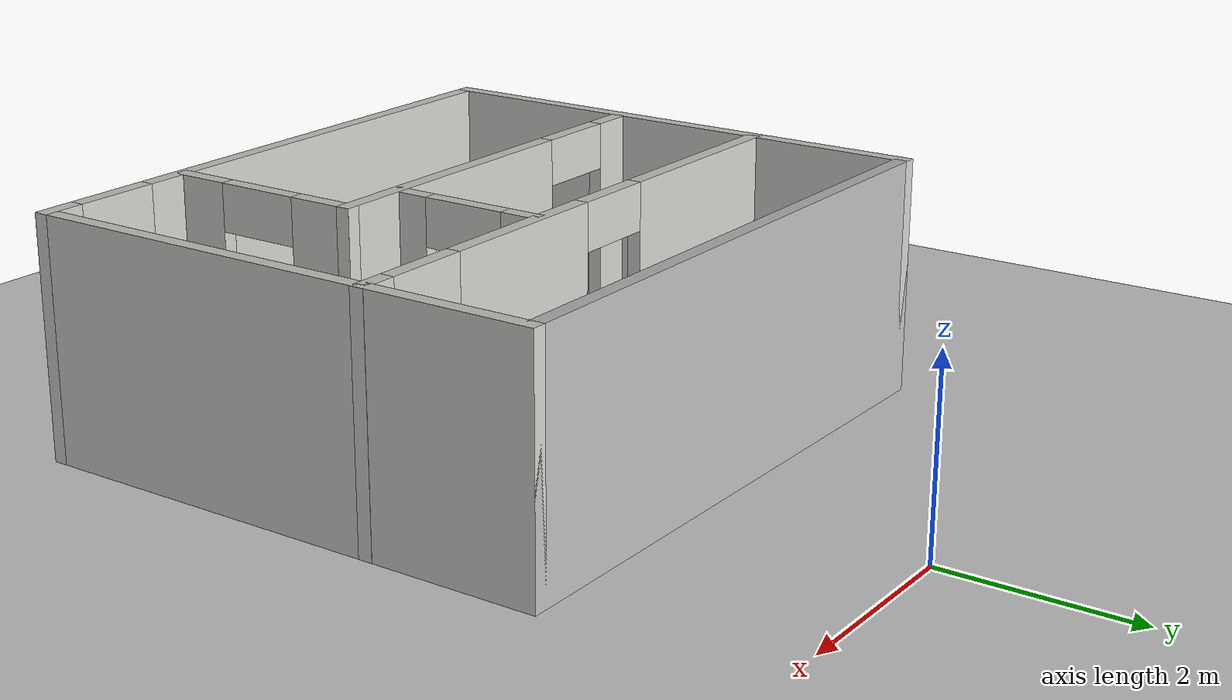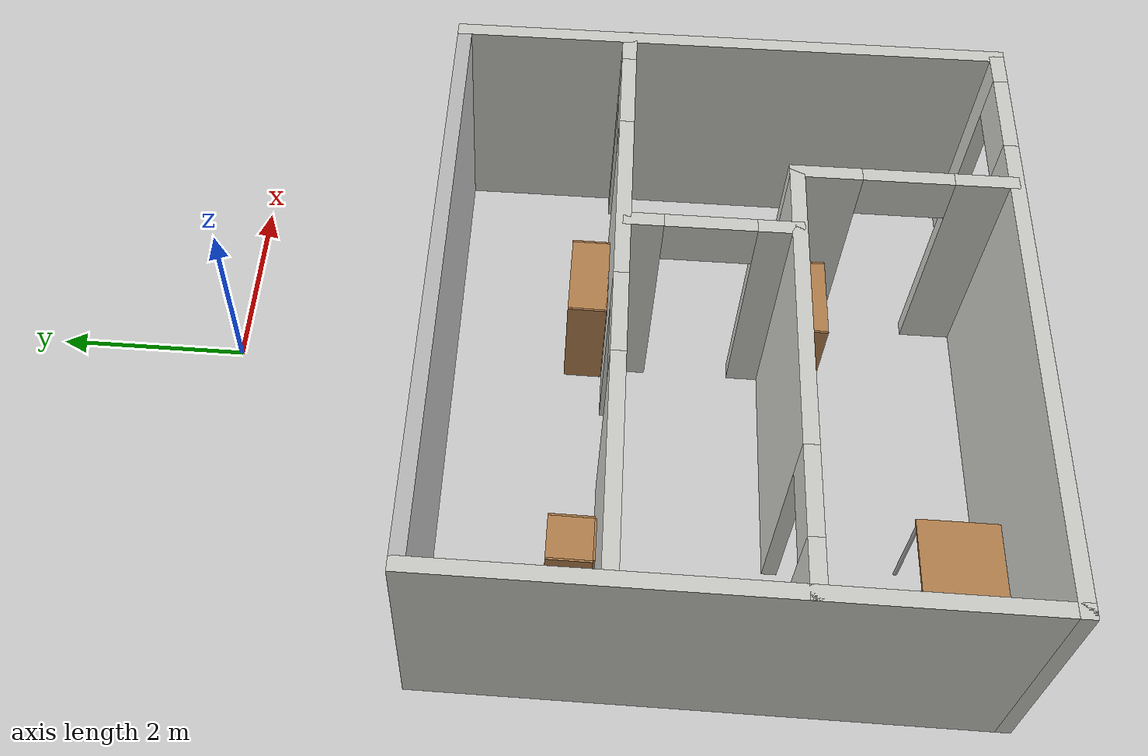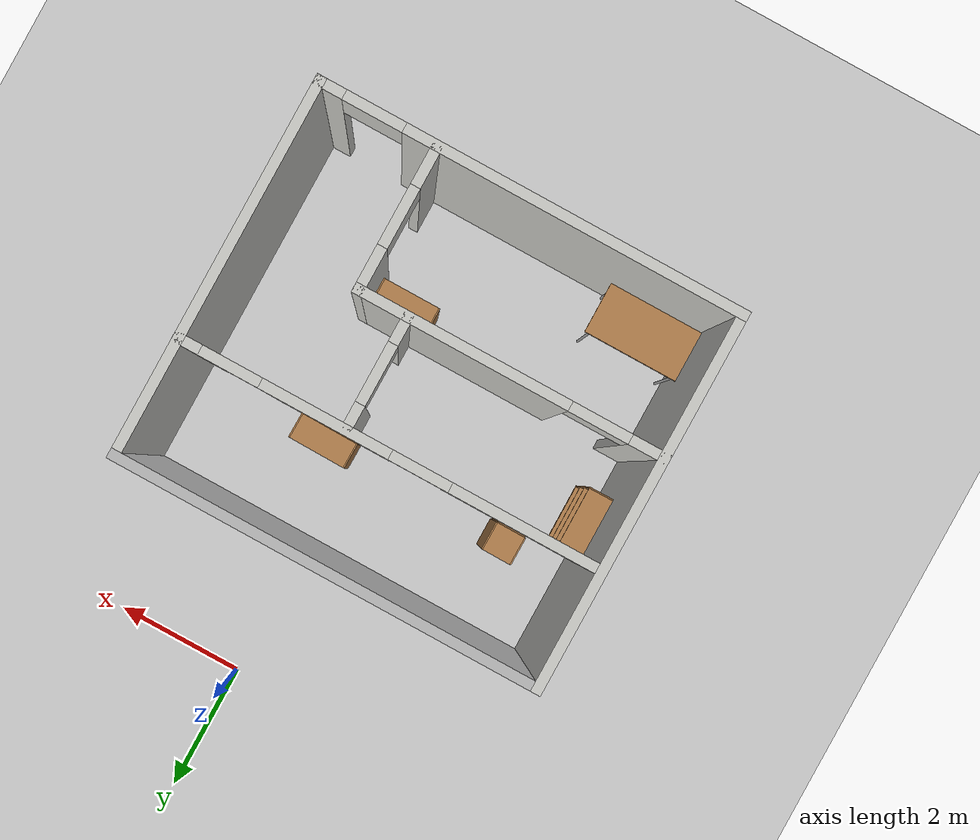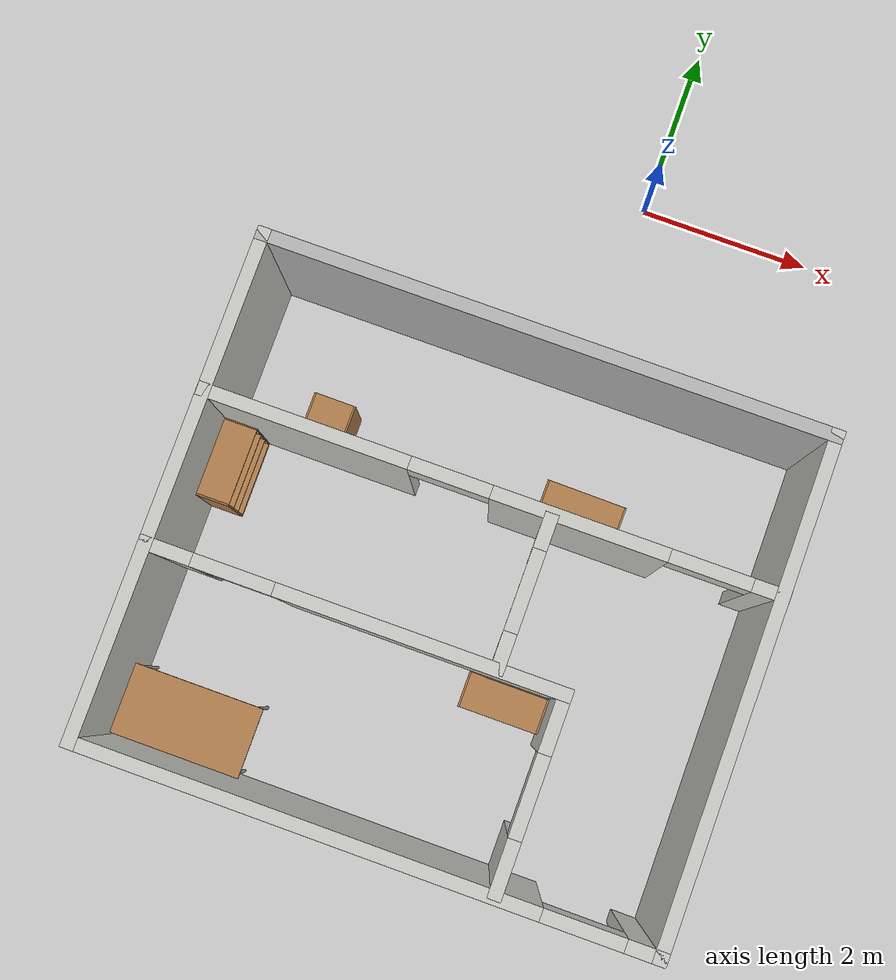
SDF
<sdf version="1.7">
 <world name="default">
  <light name="sun" type="directional">
   <pose>0 0 10 0 -0 0</pose>
   <diffuse>0.8 0.8 0.8 1</diffuse>
   <specular>0.2 0.2 0.2 1</specular>
   <attenuation>
    <range>1000</range>
    <constant>0.9</constant>
    <linear>0.01</linear>
    <quadratic>0.001</quadratic>
   </attenuation>
   <direction>-0.5 0.1 -0.9</direction>
   <spot><inner_angle>0</inner_angle><outer_angle>0</outer_angle><falloff>0</falloff></spot>
  </light>
  <model name="ground_plane">
   <static>1</static>
   <link name="link">
    <collision name="collision">
     <geometry><plane><normal>0 0 1</normal><size>100 100</size></plane></geometry>
     <surface><friction><ode><mu>100</mu><mu2>50</mu2></ode></friction></surface>
    </collision>
    <visual name="visual">
     <cast_shadows>0</cast_shadows>
     <geometry><plane><normal>0 0 1</normal><size>100 100</size></plane></geometry>
     <material>
      <script><uri>file://media/materials/scripts/gazebo.material</uri><name>Gazebo/Grey</name></script>
     </material>
    </visual>
   </link>
  </model>
  <gravity>0 0 -9.8</gravity>
  <magnetic_field>6e-06 2.3e-05 -4.2e-05</magnetic_field>
  <atmosphere type="adiabatic"/>
  <physics type="ode">
   <max_step_size>0.001</max_step_size>
   <real_time_factor>1</real_time_factor>
   <real_time_update_rate>1000</real_time_update_rate>
  </physics>
  <scene><ambient>0.4 0.4 0.4 1</ambient><background>0.7 0.7 0.7 1</background><shadows>1</shadows></scene>
  <audio><device>default</device></audio>
  <spherical_coordinates>
   <surface_model>EARTH_WGS84</surface_model>
   <latitude_deg>0</latitude_deg>
   <longitude_deg>0</longitude_deg>
   <elevation>0</elevation>
   <heading_deg>0</heading_deg>
  </spherical_coordinates>
  <model name="factory">
   <pose>-0.515946 -3.48725 0 0 -0 0</pose>
   <link name="Wall_25">
    <pose>-0.001225 -4.40387 0 0 -0 0</pose>
    <visual name="Wall_25_Visual_0">
     <pose>-0.67288 0 1.25 0 -0 0</pose>
     <geometry><box><size>5.15424 0.15 2.5</size></box></geometry>
     <material>
      <script><uri>file://media/materials/scripts/gazebo.material</uri><name>Gazebo/CeilingTiled</name></script>
      <ambient>1 1 1 1</ambient>
     </material>
     <meta><layer>0</layer></meta>
    </visual>
    <collision name="Wall_25_Collision_0">
     <geometry><box><size>5.15424 0.15 2.5</size></box></geometry>
     <pose>-0.67288 0 1.25 0 -0 0</pose>
    </collision>
    <visual name="Wall_25_Visual_1">
     <pose>3.02712 0 1.25 0 -0 0</pose>
     <geometry><box><size>0.44576 0.15 2.5</size></box></geometry>
     <material>
      <script><uri>file://media/materials/scripts/gazebo.material</uri><name>Gazebo/CeilingTiled</name></script>
      <ambient>1 1 1 1</ambient>
     </material>
     <meta><layer>0</layer></meta>
    </visual>
    <collision name="Wall_25_Collision_1">
     <geometry><box><size>0.44576 0.15 2.5</size></box></geometry>
     <pose>3.02712 0 1.25 0 -0 0</pose>
    </collision>
    <visual name="Wall_25_Visual_2">
     <pose>2.35424 0 2.25 0 -0 0</pose>
     <geometry><box><size>0.9 0.15 0.5</size></box></geometry>
     <material>
      <script><uri>file://media/materials/scripts/gazebo.material</uri><name>Gazebo/CeilingTiled</name></script>
      <ambient>1 1 1 1</ambient>
     </material>
     <meta><layer>0</layer></meta>
    </visual>
    <collision name="Wall_25_Collision_2">
     <geometry><box><size>0.9 0.15 0.5</size></box></geometry>
     <pose>2.35424 0 2.25 0 -0 0</pose>
    </collision>
   </link>
   <link name="Wall_27">
    <collision name="Wall_27_Collision">
     <geometry><box><size>5.75 0.15 2.5</size></box></geometry>
     <pose>0 0 1.25 0 -0 0</pose>
    </collision>
    <visual name="Wall_27_Visual">
     <pose>0 0 1.25 0 -0 0</pose>
     <geometry><box><size>5.75 0.15 2.5</size></box></geometry>
     <material>
      <script><uri>file://media/materials/scripts/gazebo.material</uri><name>Gazebo/CeilingTiled</name></script>
      <ambient>1 1 1 1</ambient>
     </material>
     <meta><layer>0</layer></meta>
    </visual>
    <pose>-3.17623 -1.60387 0 0 -0 1.5708</pose>
   </link>
   <link name="Wall_28">
    <collision name="Wall_28_Collision">
     <geometry><box><size>6.5 0.15 2.5</size></box></geometry>
     <pose>0 0 1.25 0 -0 0</pose>
    </collision>
    <visual name="Wall_28_Visual">
     <pose>0 0 1.25 0 -0 0</pose>
     <geometry><box><size>6.5 0.15 2.5</size></box></geometry>
     <material>
      <script>
       <uri>model://factory/materials/scripts</uri>
       <uri>model://factory/materials/textures</uri>
       <name>factory/WallLogo</name>
      </script>
     </material>
     <meta><layer>0</layer></meta>
    </visual>
    <pose>-0.001225 1.19613 0 0 -0 0</pose>
   </link>
   <link name="Wall_29">
    <collision name="Wall_29_Collision">
     <geometry><box><size>5.75 0.15 2.5</size></box></geometry>
     <pose>0 0 1.25 0 -0 0</pose>
    </collision>
    <visual name="Wall_29_Visual">
     <pose>0 0 1.25 0 -0 0</pose>
     <geometry><box><size>5.75 0.15 2.5</size></box></geometry>
     <material>
      <script><uri>file://media/materials/scripts/gazebo.material</uri><name>Gazebo/CeilingTiled</name></script>
      <ambient>1 1 1 1</ambient>
     </material>
     <meta><layer>0</layer></meta>
    </visual>
    <pose>3.17378 -1.60387 0 0 -0 -1.5708</pose>
   </link>
   <link name="Wall_36">
    <pose>1.40632 -3.30591 0 0 -0 -1.57076</pose>
    <visual name="Wall_36_Visual_0">
     <pose>-0.765691 0 1.25 0 -0 0</pose>
     <geometry><box><size>0.718618 0.15 2.5</size></box></geometry>
     <material>
      <script><uri>file://media/materials/scripts/gazebo.material</uri><name>Gazebo/CeilingTiled</name></script>
      <ambient>1 1 1 1</ambient>
     </material>
     <meta><layer>0</layer></meta>
    </visual>
    <collision name="Wall_36_Collision_0">
     <geometry><box><size>0.718618 0.15 2.5</size></box></geometry>
     <pose>-0.765691 0 1.25 0 -0 0</pose>
    </collision>
    <visual name="Wall_36_Visual_1">
     <pose>0.809309 0 1.25 0 -0 0</pose>
     <geometry><box><size>0.631382 0.15 2.5</size></box></geometry>
     <material>
      <script><uri>file://media/materials/scripts/gazebo.material</uri><name>Gazebo/CeilingTiled</name></script>
      <ambient>1 1 1 1</ambient>
     </material>
     <meta><layer>0</layer></meta>
    </visual>
    <collision name="Wall_36_Collision_1">
     <geometry><box><size>0.631382 0.15 2.5</size></box></geometry>
     <pose>0.809309 0 1.25 0 -0 0</pose>
    </collision>
    <visual name="Wall_36_Visual_2">
     <pose>0.043618 0 2.25 0 -0 0</pose>
     <geometry><box><size>0.9 0.15 0.5</size></box></geometry>
     <material>
      <script><uri>file://media/materials/scripts/gazebo.material</uri><name>Gazebo/CeilingTiled</name></script>
      <ambient>1 1 1 1</ambient>
     </material>
     <meta><layer>0</layer></meta>
    </visual>
    <collision name="Wall_36_Collision_2">
     <geometry><box><size>0.9 0.15 0.5</size></box></geometry>
     <pose>0.043618 0 2.25 0 -0 0</pose>
    </collision>
   </link>
   <link name="Wall_38">
    <pose>-0.883713 -2.25613 0 0 -0 3.14159</pose>
    <visual name="Wall_38_Visual_0">
     <pose>-0.741035 0 1.25 0 -0 0</pose>
     <geometry><box><size>3.24793 0.15 2.5</size></box></geometry>
     <material>
      <script><uri>file://media/materials/scripts/gazebo.material</uri><name>Gazebo/CeilingTiled</name></script>
      <ambient>1 1 1 1</ambient>
     </material>
     <meta><layer>0</layer></meta>
    </visual>
    <collision name="Wall_38_Collision_0">
     <geometry><box><size>3.24793 0.15 2.5</size></box></geometry>
     <pose>-0.741035 0 1.25 0 -0 0</pose>
    </collision>
    <visual name="Wall_38_Visual_1">
     <pose>2.07396 0 1.25 0 -0 0</pose>
     <geometry><box><size>0.582069 0.15 2.5</size></box></geometry>
     <material>
      <script><uri>file://media/materials/scripts/gazebo.material</uri><name>Gazebo/CeilingTiled</name></script>
      <ambient>1 1 1 1</ambient>
     </material>
     <meta><layer>0</layer></meta>
    </visual>
    <collision name="Wall_38_Collision_1">
     <geometry><box><size>0.582069 0.15 2.5</size></box></geometry>
     <pose>2.07396 0 1.25 0 -0 0</pose>
    </collision>
    <visual name="Wall_38_Visual_2">
     <pose>1.33293 0 2.25 0 -0 0</pose>
     <geometry><box><size>0.9 0.15 0.5</size></box></geometry>
     <material>
      <script><uri>file://media/materials/scripts/gazebo.material</uri><name>Gazebo/CeilingTiled</name></script>
      <ambient>1 1 1 1</ambient>
     </material>
     <meta><layer>0</layer></meta>
    </visual>
    <collision name="Wall_38_Collision_2">
     <geometry><box><size>0.9 0.15 0.5</size></box></geometry>
     <pose>1.33293 0 2.25 0 -0 0</pose>
    </collision>
   </link>
   <link name="Wall_42">
    <pose>0.002225 -0.560579 0 0 -0 3.14159</pose>
    <visual name="Wall_42_Visual_0">
     <pose>-3.04771 0 1.25 0 -0 0</pose>
     <geometry><box><size>0.402583 0.15 2.5</size></box></geometry>
     <material>
      <script><uri>file://media/materials/scripts/gazebo.material</uri><name>Gazebo/CeilingTiled</name></script>
      <ambient>1 1 1 1</ambient>
     </material>
     <meta><layer>0</layer></meta>
    </visual>
    <collision name="Wall_42_Collision_0">
     <geometry><box><size>0.402583 0.15 2.5</size></box></geometry>
     <pose>-3.04771 0 1.25 0 -0 0</pose>
    </collision>
    <visual name="Wall_42_Visual_1">
     <pose>-0.972022 0 1.25 0 -0 0</pose>
     <geometry><box><size>1.94879 0.15 2.5</size></box></geometry>
     <material>
      <script><uri>file://media/materials/scripts/gazebo.material</uri><name>Gazebo/CeilingTiled</name></script>
      <ambient>1 1 1 1</ambient>
     </material>
     <meta><layer>0</layer></meta>
    </visual>
    <collision name="Wall_42_Collision_1">
     <geometry><box><size>1.94879 0.15 2.5</size></box></geometry>
     <pose>-0.972022 0 1.25 0 -0 0</pose>
    </collision>
    <visual name="Wall_42_Visual_2">
     <pose>2.07569 0 1.25 0 -0 0</pose>
     <geometry><box><size>2.34663 0.15 2.5</size></box></geometry>
     <material>
      <script><uri>file://media/materials/scripts/gazebo.material</uri><name>Gazebo/CeilingTiled</name></script>
      <ambient>1 1 1 1</ambient>
     </material>
     <meta><layer>0</layer></meta>
    </visual>
    <collision name="Wall_42_Collision_2">
     <geometry><box><size>2.34663 0.15 2.5</size></box></geometry>
     <pose>2.07569 0 1.25 0 -0 0</pose>
    </collision>
    <visual name="Wall_42_Visual_3">
     <pose>-2.39642 0 2.25 0 -0 0</pose>
     <geometry><box><size>0.9 0.15 0.5</size></box></geometry>
     <material>
      <script><uri>file://media/materials/scripts/gazebo.material</uri><name>Gazebo/CeilingTiled</name></script>
      <ambient>1 1 1 1</ambient>
     </material>
     <meta><layer>0</layer></meta>
    </visual>
    <collision name="Wall_42_Collision_3">
     <geometry><box><size>0.9 0.15 0.5</size></box></geometry>
     <pose>-2.39642 0 2.25 0 -0 0</pose>
    </collision>
    <visual name="Wall_42_Visual_4">
     <pose>0.452373 0 2.25 0 -0 0</pose>
     <geometry><box><size>0.9 0.15 0.5</size></box></geometry>
     <material>
      <script><uri>file://media/materials/scripts/gazebo.material</uri><name>Gazebo/CeilingTiled</name></script>
      <ambient>1 1 1 1</ambient>
     </material>
     <meta><layer>0</layer></meta>
    </visual>
    <collision name="Wall_42_Collision_4">
     <geometry><box><size>0.9 0.15 0.5</size></box></geometry>
     <pose>0.452373 0 2.25 0 -0 0</pose>
    </collision>
   </link>
   <link name="Wall_44">
    <pose>0.668396 -1.43097 0 0 -0 -1.5708</pose>
    <visual name="Wall_44_Visual_0">
     <pose>-0.676577 0 1.25 0 -0 0</pose>
     <geometry><box><size>0.396846 0.15 2.5</size></box></geometry>
     <material>
      <script><uri>file://media/materials/scripts/gazebo.material</uri><name>Gazebo/CeilingTiled</name></script>
      <ambient>1 1 1 1</ambient>
     </material>
     <meta><layer>0</layer></meta>
    </visual>
    <collision name="Wall_44_Collision_0">
     <geometry><box><size>0.396846 0.15 2.5</size></box></geometry>
     <pose>-0.676577 0 1.25 0 -0 0</pose>
    </collision>
    <visual name="Wall_44_Visual_1">
     <pose>0.648423 0 1.25 0 -0 0</pose>
     <geometry><box><size>0.453154 0.15 2.5</size></box></geometry>
     <material>
      <script><uri>file://media/materials/scripts/gazebo.material</uri><name>Gazebo/CeilingTiled</name></script>
      <ambient>1 1 1 1</ambient>
     </material>
     <meta><layer>0</layer></meta>
    </visual>
    <collision name="Wall_44_Collision_1">
     <geometry><box><size>0.453154 0.15 2.5</size></box></geometry>
     <pose>0.648423 0 1.25 0 -0 0</pose>
    </collision>
    <visual name="Wall_44_Visual_2">
     <pose>-0.028154 0 2.25 0 -0 0</pose>
     <geometry><box><size>0.9 0.15 0.5</size></box></geometry>
     <material>
      <script><uri>file://media/materials/scripts/gazebo.material</uri><name>Gazebo/CeilingTiled</name></script>
      <ambient>1 1 1 1</ambient>
     </material>
     <meta><layer>0</layer></meta>
    </visual>
    <collision name="Wall_44_Collision_2">
     <geometry><box><size>0.9 0.15 0.5</size></box></geometry>
     <pose>-0.028154 0 2.25 0 -0 0</pose>
    </collision>
   </link>
   <static>1</static>
  </model>
  <model name="bookshelf">
   <static>1</static>
   <link name="link">
    <inertial><mass>1</mass></inertial>
    <collision name="back">
     <pose>0 0.005 0.6 0 -0 0</pose>
     <geometry><box><size>0.9 0.01 1.2</size></box></geometry>
    </collision>
    <visual name="visual1">
     <pose>0 0.005 0.6 0 -0 0</pose>
     <geometry><box><size>0.9 0.01 1.2</size></box></geometry>
     <material>
      <script><uri>file://media/materials/scripts/gazebo.material</uri><name>Gazebo/Wood</name></script>
     </material>
    </visual>
    <collision name="left_side">
     <pose>0.45 -0.195 0.6 0 -0 0</pose>
     <geometry><box><size>0.02 0.4 1.2</size></box></geometry>
    </collision>
    <visual name="visual2">
     <pose>0.45 -0.195 0.6 0 -0 0</pose>
     <geometry><box><size>0.02 0.4 1.2</size></box></geometry>
     <material>
      <script><uri>file://media/materials/scripts/gazebo.material</uri><name>Gazebo/Wood</name></script>
     </material>
    </visual>
    <collision name="right_side">
     <pose>-0.45 -0.195 0.6 0 -0 0</pose>
     <geometry><box><size>0.02 0.4 1.2</size></box></geometry>
    </collision>
    <visual name="visual3">
     <pose>-0.45 -0.195 0.6 0 -0 0</pose>
     <geometry><box><size>0.02 0.4 1.2</size></box></geometry>
     <material>
      <script><uri>file://media/materials/scripts/gazebo.material</uri><name>Gazebo/Wood</name></script>
     </material>
    </visual>
    <collision name="bottom">
     <pose>0 -0.195 0.03 0 -0 0</pose>
     <geometry><box><size>0.88 0.4 0.06</size></box></geometry>
    </collision>
    <visual name="visual4">
     <pose>0 -0.195 0.03 0 -0 0</pose>
     <geometry><box><size>0.88 0.4 0.06</size></box></geometry>
     <material>
      <script><uri>file://media/materials/scripts/gazebo.material</uri><name>Gazebo/Wood</name></script>
     </material>
    </visual>
    <collision name="top">
     <pose>0 -0.195 1.19 0 -0 0</pose>
     <geometry><box><size>0.88 0.4 0.02</size></box></geometry>
    </collision>
    <visual name="visual5">
     <pose>0 -0.195 1.19 0 -0 0</pose>
     <geometry><box><size>0.88 0.4 0.02</size></box></geometry>
     <material>
      <script><uri>file://media/materials/scripts/gazebo.material</uri><name>Gazebo/Wood</name></script>
     </material>
    </visual>
    <collision name="low_shelf">
     <pose>0 -0.195 0.43 0 -0 0</pose>
     <geometry><box><size>0.88 0.4 0.02</size></box></geometry>
    </collision>
    <visual name="visual6">
     <pose>0 -0.195 0.43 0 -0 0</pose>
     <geometry><box><size>0.88 0.4 0.02</size></box></geometry>
     <material>
      <script><uri>file://media/materials/scripts/gazebo.material</uri><name>Gazebo/Wood</name></script>
     </material>
    </visual>
    <collision name="high_shelf">
     <pose>0 -0.195 0.8 0 -0 0</pose>
     <geometry><box><size>0.88 0.4 0.02</size></box></geometry>
    </collision>
    <visual name="visual7">
     <pose>0 -0.195 0.8 0 -0 0</pose>
     <geometry><box><size>0.88 0.4 0.02</size></box></geometry>
     <material>
      <script><uri>file://media/materials/scripts/gazebo.material</uri><name>Gazebo/Wood</name></script>
     </material>
    </visual>
   </link>
   <pose>0.444236 -3.96678 0 0 -0 3.12969</pose>
  </model>
  <model name="cabinet">
   <static>1</static>
   <link name="cabinet_bottom_plate">
    <inertial>
     <pose>0 0 -1 0 -0 0</pose>
     <inertia><ixx>2.05</ixx><ixy>0</ixy><ixz>0</ixz><iyy>2.05</iyy><iyz>0</iyz><izz>2.05</izz></inertia>
     <mass>25</mass>
    </inertial>
    <collision name="cabinet_bottom_plate_geom">
     <pose>0 0 0.01 0 -0 0</pose>
     <geometry><box><size>0.45 0.45 0.02</size></box></geometry>
    </collision>
    <visual name="cabinet_bottom_plate_geom_visual">
     <pose>0 0 0.01 0 -0 0</pose>
     <geometry><box><size>0.45 0.45 0.02</size></box></geometry>
     <material>
      <script><uri>file://media/materials/scripts/gazebo.material</uri><name>Gazebo/Wood</name></script>
     </material>
    </visual>
    <collision name="cabinet_bottom_plate_geom_cabinet_back_plate">
     <pose>0.235 0 0.51 0 -0 0</pose>
     <geometry><box><size>0.02 0.45 1.02</size></box></geometry>
    </collision>
    <visual name="cabinet_bottom_plate_geom_cabinet_back_plate_visual">
     <pose>0.235 0 0.51 0 -0 0</pose>
     <geometry><box><size>0.02 0.45 1.02</size></box></geometry>
     <material>
      <script><uri>file://media/materials/scripts/gazebo.material</uri><name>Gazebo/Wood</name></script>
     </material>
    </visual>
    <collision name="cabinet_bottom_plate_geom_cabinet_left_plate">
     <pose>0 0.235 0.51 0 -0 0</pose>
     <geometry><box><size>0.45 0.02 1.02</size></box></geometry>
    </collision>
    <visual name="cabinet_bottom_plate_geom_cabinet_left_plate_visual">
     <pose>0 0.235 0.51 0 -0 0</pose>
     <geometry><box><size>0.45 0.02 1.02</size></box></geometry>
     <material>
      <script><uri>file://media/materials/scripts/gazebo.material</uri><name>Gazebo/Wood</name></script>
     </material>
    </visual>
    <collision name="cabinet_bottom_plate_geom_cabinet_middle_plate">
     <pose>0 0 0.51 0 -0 0</pose>
     <geometry><box><size>0.45 0.45 0.02</size></box></geometry>
    </collision>
    <visual name="cabinet_bottom_plate_geom_cabinet_middle_plate_visual">
     <pose>0 0 0.51 0 -0 0</pose>
     <geometry><box><size>0.45 0.45 0.02</size></box></geometry>
     <material>
      <script><uri>file://media/materials/scripts/gazebo.material</uri><name>Gazebo/Wood</name></script>
     </material>
    </visual>
    <collision name="cabinet_bottom_plate_geom_cabinet_right_plate">
     <pose>0 -0.235 0.51 0 -0 0</pose>
     <geometry><box><size>0.45 0.02 1.02</size></box></geometry>
    </collision>
    <visual name="cabinet_bottom_plate_geom_cabinet_right_plate_visual">
     <pose>0 -0.235 0.51 0 -0 0</pose>
     <geometry><box><size>0.45 0.02 1.02</size></box></geometry>
     <material>
      <script><uri>file://media/materials/scripts/gazebo.material</uri><name>Gazebo/Wood</name></script>
     </material>
    </visual>
    <collision name="cabinet_bottom_plate_geom_cabinet_top_plate">
     <pose>0 0 1.01 0 -0 0</pose>
     <geometry><box><size>0.45 0.45 0.02</size></box></geometry>
    </collision>
    <visual name="cabinet_bottom_plate_geom_cabinet_top_plate_visual">
     <pose>0 0 1.01 0 -0 0</pose>
     <geometry><box><size>0.45 0.45 0.02</size></box></geometry>
     <material>
      <script><uri>file://media/materials/scripts/gazebo.material</uri><name>Gazebo/Wood</name></script>
     </material>
    </visual>
   </link>
   <pose>-2.56022 -3.72315 0 0 0 -1.57696</pose>
  </model>
  <model name="table">
   <static>1</static>
   <link name="link">
    <collision name="surface">
     <pose>0 0 1 0 -0 0</pose>
     <geometry><box><size>1.5 0.8 0.03</size></box></geometry>
     <surface><friction><ode><mu>0.6</mu><mu2>0.6</mu2></ode></friction></surface>
    </collision>
    <visual name="visual1">
     <pose>0 0 1 0 -0 0</pose>
     <geometry><box><size>1.5 0.8 0.03</size></box></geometry>
     <material>
      <script><uri>file://media/materials/scripts/gazebo.material</uri><name>Gazebo/Wood</name></script>
     </material>
    </visual>
    <collision name="front_left_leg">
     <pose>0.68 0.38 0.5 0 -0 0</pose>
     <geometry><cylinder><radius>0.02</radius><length>1</length></cylinder></geometry>
    </collision>
    <visual name="front_left_leg">
     <pose>0.68 0.38 0.5 0 -0 0</pose>
     <geometry><cylinder><radius>0.02</radius><length>1</length></cylinder></geometry>
     <material>
      <script><uri>file://media/materials/scripts/gazebo.material</uri><name>Gazebo/Grey</name></script>
     </material>
    </visual>
    <collision name="front_right_leg">
     <pose>0.68 -0.38 0.5 0 -0 0</pose>
     <geometry><cylinder><radius>0.02</radius><length>1</length></cylinder></geometry>
    </collision>
    <visual name="front_right_leg">
     <pose>0.68 -0.38 0.5 0 -0 0</pose>
     <geometry><cylinder><radius>0.02</radius><length>1</length></cylinder></geometry>
     <material>
      <script><uri>file://media/materials/scripts/gazebo.material</uri><name>Gazebo/Grey</name></script>
     </material>
    </visual>
    <collision name="back_right_leg">
     <pose>-0.68 -0.38 0.5 0 -0 0</pose>
     <geometry><cylinder><radius>0.02</radius><length>1</length></cylinder></geometry>
    </collision>
    <visual name="back_right_leg">
     <pose>-0.68 -0.38 0.5 0 -0 0</pose>
     <geometry><cylinder><radius>0.02</radius><length>1</length></cylinder></geometry>
     <material>
      <script><uri>file://media/materials/scripts/gazebo.material</uri><name>Gazebo/Grey</name></script>
     </material>
    </visual>
    <collision name="back_left_leg">
     <pose>-0.68 0.38 0.5 0 -0 0</pose>
     <geometry><cylinder><radius>0.02</radius><length>1</length></cylinder></geometry>
    </collision>
    <visual name="back_left_leg">
     <pose>-0.68 0.38 0.5 0 -0 0</pose>
     <geometry><cylinder><radius>0.02</radius><length>1</length></cylinder></geometry>
     <material>
      <script><uri>file://media/materials/scripts/gazebo.material</uri><name>Gazebo/Grey</name></script>
     </material>
    </visual>
   </link>
   <pose>-2.85933 -7.38991 0 0 -0 0</pose>
  </model>
  <model name="bookshelf_0">
   <static>1</static>
   <link name="link">
    <inertial><mass>1</mass></inertial>
    <collision name="back">
     <pose>0 0.005 0.6 0 -0 0</pose>
     <geometry><box><size>0.9 0.01 1.2</size></box></geometry>
    </collision>
    <visual name="visual1">
     <pose>0 0.005 0.6 0 -0 0</pose>
     <geometry><box><size>0.9 0.01 1.2</size></box></geometry>
     <material>
      <script><uri>file://media/materials/scripts/gazebo.material</uri><name>Gazebo/Wood</name></script>
     </material>
    </visual>
    <collision name="left_side">
     <pose>0.45 -0.195 0.6 0 -0 0</pose>
     <geometry><box><size>0.02 0.4 1.2</size></box></geometry>
    </collision>
    <visual name="visual2">
     <pose>0.45 -0.195 0.6 0 -0 0</pose>
     <geometry><box><size>0.02 0.4 1.2</size></box></geometry>
     <material>
      <script><uri>file://media/materials/scripts/gazebo.material</uri><name>Gazebo/Wood</name></script>
     </material>
    </visual>
    <collision name="right_side">
     <pose>-0.45 -0.195 0.6 0 -0 0</pose>
     <geometry><box><size>0.02 0.4 1.2</size></box></geometry>
    </collision>
    <visual name="visual3">
     <pose>-0.45 -0.195 0.6 0 -0 0</pose>
     <geometry><box><size>0.02 0.4 1.2</size></box></geometry>
     <material>
      <script><uri>file://media/materials/scripts/gazebo.material</uri><name>Gazebo/Wood</name></script>
     </material>
    </visual>
    <collision name="bottom">
     <pose>0 -0.195 0.03 0 -0 0</pose>
     <geometry><box><size>0.88 0.4 0.06</size></box></geometry>
    </collision>
    <visual name="visual4">
     <pose>0 -0.195 0.03 0 -0 0</pose>
     <geometry><box><size>0.88 0.4 0.06</size></box></geometry>
     <material>
      <script><uri>file://media/materials/scripts/gazebo.material</uri><name>Gazebo/Wood</name></script>
     </material>
    </visual>
    <collision name="top">
     <pose>0 -0.195 1.19 0 -0 0</pose>
     <geometry><box><size>0.88 0.4 0.02</size></box></geometry>
    </collision>
    <visual name="visual5">
     <pose>0 -0.195 1.19 0 -0 0</pose>
     <geometry><box><size>0.88 0.4 0.02</size></box></geometry>
     <material>
      <script><uri>file://media/materials/scripts/gazebo.material</uri><name>Gazebo/Wood</name></script>
     </material>
    </visual>
    <collision name="low_shelf">
     <pose>0 -0.195 0.43 0 -0 0</pose>
     <geometry><box><size>0.88 0.4 0.02</size></box></geometry>
    </collision>
    <visual name="visual6">
     <pose>0 -0.195 0.43 0 -0 0</pose>
     <geometry><box><size>0.88 0.4 0.02</size></box></geometry>
     <material>
      <script><uri>file://media/materials/scripts/gazebo.material</uri><name>Gazebo/Wood</name></script>
     </material>
    </visual>
    <collision name="high_shelf">
     <pose>0 -0.195 0.8 0 -0 0</pose>
     <geometry><box><size>0.88 0.4 0.02</size></box></geometry>
    </collision>
    <visual name="visual7">
     <pose>0 -0.195 0.8 0 -0 0</pose>
     <geometry><box><size>0.88 0.4 0.02</size></box></geometry>
     <material>
      <script><uri>file://media/materials/scripts/gazebo.material</uri><name>Gazebo/Wood</name></script>
     </material>
    </visual>
   </link>
   <pose>-3.62823 -4.57691 0 0 -0 1.5722</pose>
  </model>
  <model name="bookshelf_1">
   <static>1</static>
   <link name="link">
    <inertial><mass>1</mass></inertial>
    <collision name="back">
     <pose>0 0.005 0.6 0 -0 0</pose>
     <geometry><box><size>0.9 0.01 1.2</size></box></geometry>
    </collision>
    <visual name="visual1">
     <pose>0 0.005 0.6 0 -0 0</pose>
     <geometry><box><size>0.9 0.01 1.2</size></box></geometry>
     <material>
      <script><uri>file://media/materials/scripts/gazebo.material</uri><name>Gazebo/Wood</name></script>
     </material>
    </visual>
    <collision name="left_side">
     <pose>0.45 -0.195 0.6 0 -0 0</pose>
     <geometry><box><size>0.02 0.4 1.2</size></box></geometry>
    </collision>
    <visual name="visual2">
     <pose>0.45 -0.195 0.6 0 -0 0</pose>
     <geometry><box><size>0.02 0.4 1.2</size></box></geometry>
     <material>
      <script><uri>file://media/materials/scripts/gazebo.material</uri><name>Gazebo/Wood</name></script>
     </material>
    </visual>
    <collision name="right_side">
     <pose>-0.45 -0.195 0.6 0 -0 0</pose>
     <geometry><box><size>0.02 0.4 1.2</size></box></geometry>
    </collision>
    <visual name="visual3">
     <pose>-0.45 -0.195 0.6 0 -0 0</pose>
     <geometry><box><size>0.02 0.4 1.2</size></box></geometry>
     <material>
      <script><uri>file://media/materials/scripts/gazebo.material</uri><name>Gazebo/Wood</name></script>
     </material>
    </visual>
    <collision name="bottom">
     <pose>0 -0.195 0.03 0 -0 0</pose>
     <geometry><box><size>0.88 0.4 0.06</size></box></geometry>
    </collision>
    <visual name="visual4">
     <pose>0 -0.195 0.03 0 -0 0</pose>
     <geometry><box><size>0.88 0.4 0.06</size></box></geometry>
     <material>
      <script><uri>file://media/materials/scripts/gazebo.material</uri><name>Gazebo/Wood</name></script>
     </material>
    </visual>
    <collision name="top">
     <pose>0 -0.195 1.19 0 -0 0</pose>
     <geometry><box><size>0.88 0.4 0.02</size></box></geometry>
    </collision>
    <visual name="visual5">
     <pose>0 -0.195 1.19 0 -0 0</pose>
     <geometry><box><size>0.88 0.4 0.02</size></box></geometry>
     <material>
      <script><uri>file://media/materials/scripts/gazebo.material</uri><name>Gazebo/Wood</name></script>
     </material>
    </visual>
    <collision name="low_shelf">
     <pose>0 -0.195 0.43 0 -0 0</pose>
     <geometry><box><size>0.88 0.4 0.02</size></box></geometry>
    </collision>
    <visual name="visual6">
     <pose>0 -0.195 0.43 0 -0 0</pose>
     <geometry><box><size>0.88 0.4 0.02</size></box></geometry>
     <material>
      <script><uri>file://media/materials/scripts/gazebo.material</uri><name>Gazebo/Wood</name></script>
     </material>
    </visual>
    <collision name="high_shelf">
     <pose>0 -0.195 0.8 0 -0 0</pose>
     <geometry><box><size>0.88 0.4 0.02</size></box></geometry>
    </collision>
    <visual name="visual7">
     <pose>0 -0.195 0.8 0 -0 0</pose>
     <geometry><box><size>0.88 0.4 0.02</size></box></geometry>
     <material>
      <script><uri>file://media/materials/scripts/gazebo.material</uri><name>Gazebo/Wood</name></script>
     </material>
    </visual>
   </link>
   <pose>0.344073 -5.84192 0 0 -0 0</pose>
  </model>
 </world>
</sdf>
